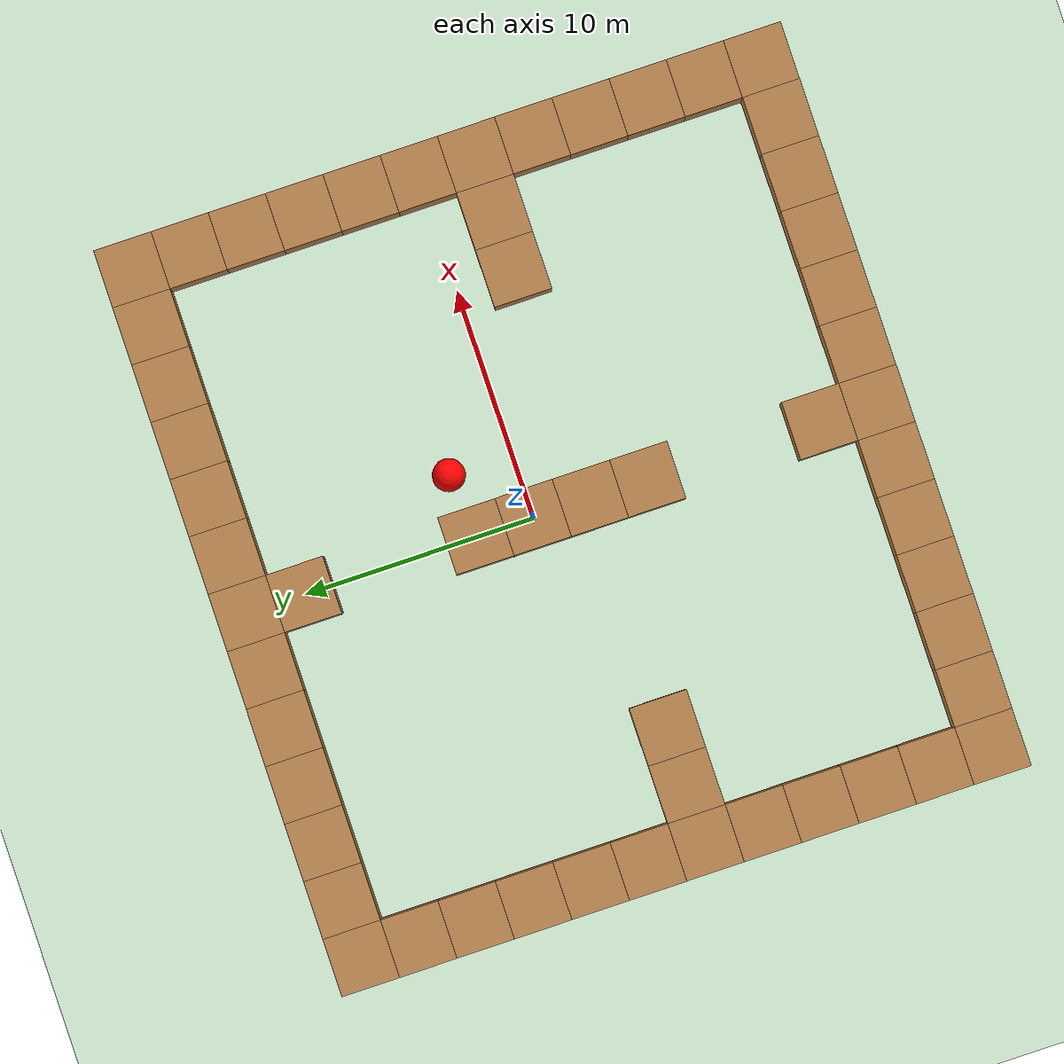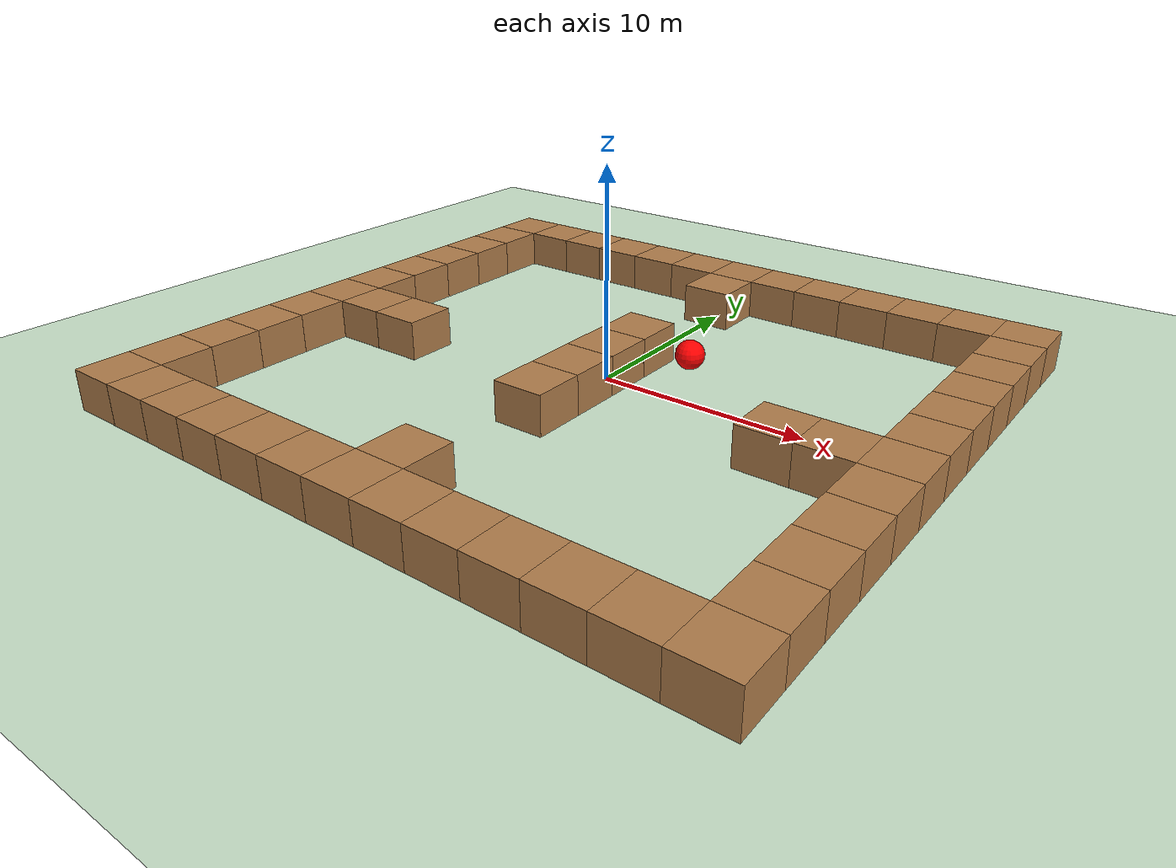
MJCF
<mujoco model="ant">
  <compiler angle="degree" coordinate="local" inertiafromgeom="true" />
  <size nconmax="3500" njmax="5000" />
  <option integrator="RK4" timestep="0.01" />
  <custom>
    <numeric data="0.0 0.0 0.55 1.0 0.0 0.0 0.0 0.0 1.0 0.0 -1.0 0.0 -1.0 0.0 1.0" name="init_qpos" />
  </custom>
  <default>
    <joint armature="1" damping="1" limited="true" />
    <geom conaffinity="0" condim="3" density="5.0" friction="1 0.5 0.5" margin="0.01" rgba="0.8 0.6 0.4 1" solimp=".8 .8 .01" solref=".02 1" />
  </default>
  <asset>
    <texture builtin="gradient" height="100" rgb1="1 1 1" rgb2="0 0 0" type="skybox" width="100" />
    <texture builtin="flat" height="1278" mark="cross" markrgb="1 1 1" name="texgeom" random="0.01" rgb1="0.8 0.6 0.4" rgb2="0.8 0.6 0.4" type="cube" width="127" />
    <texture builtin="checker" height="100" name="texplane" rgb1="0.2 0.3 0.4" rgb2="0.1 0.2 0.3" type="2d" width="100" />
    <material name="MatPlane" reflectance="0.0" shininess="1" specular="1" texrepeat="60 60" texture="texplane" />
    <material name="geom" texture="texgeom" texuniform="true" />
  </asset>
  <worldbody>
    <light cutoff="100" diffuse="1 1 1" dir="-0 0 -1.3" directional="true" exponent="1" pos="0 0 1.3" specular=".1 .1 .1" />

    <geom conaffinity="1" condim="3" material="MatPlane" name="floor" pos="0 0 0" rgba="0.8 0.9 0.8 1" size="40 40 40" type="plane" />
    <body name="torso" pos="0 0 0.75">
      <geom name="torso_geom" pos="0 0 0" rgba="0.3 0.9 0.5 1" size="0.4" type="sphere" />
      <joint armature="0" axis="0 0 1" damping="0" limited="false" margin="0.01" name="root" pos="0 0 0" type="free" />
      <body name="front_left_leg" pos="0 0 0">
        <geom fromto="0.0 0.0 0.0 0.4 0.4 0.0" name="aux_1_geom" size="0.08" type="capsule" />
        <body name="aux_1" pos="0.4 0.4 0">
          <joint axis="0 0 1" name="hip_1" pos="0.0 0.0 0.0" range="-30 30" type="hinge" />
          <geom fromto="0.0 0.0 0.0 0.4 0.4 0.0" name="left_leg_geom" size="0.08" type="capsule" />
          <body pos="0.4 0.4 0">
            <joint axis="-1 1 0" name="ankle_1" pos="0.0 0.0 0.0" range="30 70" type="hinge" />
            <geom fromto="0.0 0.0 0.0 0.4 0.4 0.0" name="left_ankle_geom" size="0.08" type="capsule" />
          </body>
        </body>
      </body>
      <body name="front_right_leg" pos="0 0 0">
        <geom fromto="0.0 0.0 0.0 -0.4 0.4 0.0" name="aux_2_geom" size="0.08" type="capsule" />
        <body name="aux_2" pos="-0.4 0.4 0">
          <joint axis="0 0 1" name="hip_2" pos="0.0 0.0 0.0" range="-30 30" type="hinge" />
          <geom fromto="0.0 0.0 0.0 -0.4 0.4 0.0" name="right_leg_geom" size="0.08" type="capsule" />
          <body pos="-0.4 0.4 0">
            <joint axis="1 1 0" name="ankle_2" pos="0.0 0.0 0.0" range="-70 -30" type="hinge" />
            <geom fromto="0.0 0.0 0.0 -0.4 0.4 0.0" name="right_ankle_geom" size="0.08" type="capsule" />
          </body>
        </body>
      </body>
      <body name="back_leg" pos="0 0 0">
        <geom fromto="0.0 0.0 0.0 -0.4 -0.4 0.0" name="aux_3_geom" size="0.08" type="capsule" />
        <body name="aux_3" pos="-0.4 -0.4 0">
          <joint axis="0 0 1" name="hip_3" pos="0.0 0.0 0.0" range="-30 30" type="hinge" />
          <geom fromto="0.0 0.0 0.0 -0.4 -0.4 0.0" name="back_leg_geom" size="0.08" type="capsule" />
          <body pos="-0.4 -0.4 0">
            <joint axis="-1 1 0" name="ankle_3" pos="0.0 0.0 0.0" range="-70 -30" type="hinge" />
            <geom fromto="0.0 0.0 0.0 -0.4 -0.4 0.0" name="third_ankle_geom" size="0.08" type="capsule" />
          </body>
        </body>
      </body>
      <body name="right_back_leg" pos="0 0 0">
        <geom fromto="0.0 0.0 0.0 0.4 -0.4 0.0" name="aux_4_geom" size="0.08" type="capsule" />
        <body name="aux_4" pos="0.4 -0.4 0">
          <joint axis="0 0 1" name="hip_4" pos="0.0 0.0 0.0" range="-30 30" type="hinge" />
          <geom fromto="0.0 0.0 0.0 0.4 -0.4 0.0" name="rightback_leg_geom" size="0.08" type="capsule" />
          <body pos="0.4 -0.4 0">
            <joint axis="1 1 0" name="ankle_4" pos="0.0 0.0 0.0" range="30 70" type="hinge" />
            <geom fromto="0.0 0.0 0.0 0.4 -0.4 0.0" name="fourth_ankle_geom" size="0.08" type="capsule" />
          </body>
        </body>
      </body>
    </body>
    <body name="skybox" pos="0.8 0.75 0">
      <site name="target0" pos="2 2 1" rgba="1 0 0 1" size="0.7" type="sphere" />
      <site name="subgoal_0" pos="0 0 0.5" rgba="1 0 1 0" size="0.7" type="sphere" />
      <site name="subgoal_1" pos="0 0 0.5" rgba="0 1 0 0" size="0.7" type="sphere" />
      <site name="subgoal_2" pos="0 0 0.5" rgba="0.5 0.5 0.5 0" size="0.7" type="sphere" />
      <site name="subgoal_3" pos="0 0 0.5" rgba="1 1 1 0" size="0.7" type="sphere" />
      <site name="subgoal_4" pos="0 0 0.5" rgba="0 0 0 0" size="0.7" type="sphere" />
    </body>

  <geom material="" name="object_0_0" pos="-15.000000 12.500000 0.625000" rgba="0.7 0.5 0.3 1.0" size="1.250000 1.250000 1.250000" type="box" /><geom material="" name="object_0_1" pos="-12.500000 12.500000 0.625000" rgba="0.7 0.5 0.3 1.0" size="1.250000 1.250000 1.250000" type="box" /><geom material="" name="object_0_2" pos="-10.000000 12.500000 0.625000" rgba="0.7 0.5 0.3 1.0" size="1.250000 1.250000 1.250000" type="box" /><geom material="" name="object_0_3" pos="-7.500000 12.500000 0.625000" rgba="0.7 0.5 0.3 1.0" size="1.250000 1.250000 1.250000" type="box" /><geom material="" name="object_0_4" pos="-5.000000 12.500000 0.625000" rgba="0.7 0.5 0.3 1.0" size="1.250000 1.250000 1.250000" type="box" /><geom material="" name="object_0_5" pos="-2.500000 12.500000 0.625000" rgba="0.7 0.5 0.3 1.0" size="1.250000 1.250000 1.250000" type="box" /><geom material="" name="object_0_6" pos="0.000000 12.500000 0.625000" rgba="0.7 0.5 0.3 1.0" size="1.250000 1.250000 1.250000" type="box" /><geom material="" name="object_0_7" pos="2.500000 12.500000 0.625000" rgba="0.7 0.5 0.3 1.0" size="1.250000 1.250000 1.250000" type="box" /><geom material="" name="object_0_8" pos="5.000000 12.500000 0.625000" rgba="0.7 0.5 0.3 1.0" size="1.250000 1.250000 1.250000" type="box" /><geom material="" name="object_0_9" pos="7.500000 12.500000 0.625000" rgba="0.7 0.5 0.3 1.0" size="1.250000 1.250000 1.250000" type="box" /><geom material="" name="object_0_10" pos="10.000000 12.500000 0.625000" rgba="0.7 0.5 0.3 1.0" size="1.250000 1.250000 1.250000" type="box" /><geom material="" name="object_0_11" pos="12.500000 12.500000 0.625000" rgba="0.7 0.5 0.3 1.0" size="1.250000 1.250000 1.250000" type="box" /><geom material="" name="object_0_12" pos="15.000000 12.500000 0.625000" rgba="0.7 0.5 0.3 1.0" size="1.250000 1.250000 1.250000" type="box" /><geom material="" name="object_1_0" pos="-15.000000 10.000000 0.625000" rgba="0.7 0.5 0.3 1.0" size="1.250000 1.250000 1.250000" type="box" /><geom material="" name="object_1_6" pos="0.000000 10.000000 0.625000" rgba="0.7 0.5 0.3 1.0" size="1.250000 1.250000 1.250000" type="box" /><geom material="" name="object_1_12" pos="15.000000 10.000000 0.625000" rgba="0.7 0.5 0.3 1.0" size="1.250000 1.250000 1.250000" type="box" /><geom material="" name="object_2_0" pos="-15.000000 7.500000 0.625000" rgba="0.7 0.5 0.3 1.0" size="1.250000 1.250000 1.250000" type="box" /><geom material="" name="object_2_12" pos="15.000000 7.500000 0.625000" rgba="0.7 0.5 0.3 1.0" size="1.250000 1.250000 1.250000" type="box" /><geom material="" name="object_3_0" pos="-15.000000 5.000000 0.625000" rgba="0.7 0.5 0.3 1.0" size="1.250000 1.250000 1.250000" type="box" /><geom material="" name="object_3_12" pos="15.000000 5.000000 0.625000" rgba="0.7 0.5 0.3 1.0" size="1.250000 1.250000 1.250000" type="box" /><geom material="" name="object_4_0" pos="-15.000000 2.500000 0.625000" rgba="0.7 0.5 0.3 1.0" size="1.250000 1.250000 1.250000" type="box" /><geom material="" name="object_4_6" pos="0.000000 2.500000 0.625000" rgba="0.7 0.5 0.3 1.0" size="1.250000 1.250000 1.250000" type="box" /><geom material="" name="object_4_12" pos="15.000000 2.500000 0.625000" rgba="0.7 0.5 0.3 1.0" size="1.250000 1.250000 1.250000" type="box" /><geom material="" name="object_5_0" pos="-15.000000 0.000000 0.625000" rgba="0.7 0.5 0.3 1.0" size="1.250000 1.250000 1.250000" type="box" /><geom material="" name="object_5_6" pos="0.000000 0.000000 0.625000" rgba="0.7 0.5 0.3 1.0" size="1.250000 1.250000 1.250000" type="box" /><geom material="" name="object_5_12" pos="15.000000 0.000000 0.625000" rgba="0.7 0.5 0.3 1.0" size="1.250000 1.250000 1.250000" type="box" /><geom material="" name="object_6_0" pos="-15.000000 -2.500000 0.625000" rgba="0.7 0.5 0.3 1.0" size="1.250000 1.250000 1.250000" type="box" /><geom material="" name="object_6_1" pos="-12.500000 -2.500000 0.625000" rgba="0.7 0.5 0.3 1.0" size="1.250000 1.250000 1.250000" type="box" /><geom material="" name="object_6_2" pos="-10.000000 -2.500000 0.625000" rgba="0.7 0.5 0.3 1.0" size="1.250000 1.250000 1.250000" type="box" /><geom material="" name="object_6_6" pos="0.000000 -2.500000 0.625000" rgba="0.7 0.5 0.3 1.0" size="1.250000 1.250000 1.250000" type="box" /><geom material="" name="object_6_10" pos="10.000000 -2.500000 0.625000" rgba="0.7 0.5 0.3 1.0" size="1.250000 1.250000 1.250000" type="box" /><geom material="" name="object_6_11" pos="12.500000 -2.500000 0.625000" rgba="0.7 0.5 0.3 1.0" size="1.250000 1.250000 1.250000" type="box" /><geom material="" name="object_6_12" pos="15.000000 -2.500000 0.625000" rgba="0.7 0.5 0.3 1.0" size="1.250000 1.250000 1.250000" type="box" /><geom material="" name="object_7_0" pos="-15.000000 -5.000000 0.625000" rgba="0.7 0.5 0.3 1.0" size="1.250000 1.250000 1.250000" type="box" /><geom material="" name="object_7_6" pos="0.000000 -5.000000 0.625000" rgba="0.7 0.5 0.3 1.0" size="1.250000 1.250000 1.250000" type="box" /><geom material="" name="object_7_12" pos="15.000000 -5.000000 0.625000" rgba="0.7 0.5 0.3 1.0" size="1.250000 1.250000 1.250000" type="box" /><geom material="" name="object_8_0" pos="-15.000000 -7.500000 0.625000" rgba="0.7 0.5 0.3 1.0" size="1.250000 1.250000 1.250000" type="box" /><geom material="" name="object_8_12" pos="15.000000 -7.500000 0.625000" rgba="0.7 0.5 0.3 1.0" size="1.250000 1.250000 1.250000" type="box" /><geom material="" name="object_9_0" pos="-15.000000 -10.000000 0.625000" rgba="0.7 0.5 0.3 1.0" size="1.250000 1.250000 1.250000" type="box" /><geom material="" name="object_9_12" pos="15.000000 -10.000000 0.625000" rgba="0.7 0.5 0.3 1.0" size="1.250000 1.250000 1.250000" type="box" /><geom material="" name="object_10_0" pos="-15.000000 -12.500000 0.625000" rgba="0.7 0.5 0.3 1.0" size="1.250000 1.250000 1.250000" type="box" /><geom material="" name="object_10_6" pos="0.000000 -12.500000 0.625000" rgba="0.7 0.5 0.3 1.0" size="1.250000 1.250000 1.250000" type="box" /><geom material="" name="object_10_12" pos="15.000000 -12.500000 0.625000" rgba="0.7 0.5 0.3 1.0" size="1.250000 1.250000 1.250000" type="box" /><geom material="" name="object_11_0" pos="-15.000000 -15.000000 0.625000" rgba="0.7 0.5 0.3 1.0" size="1.250000 1.250000 1.250000" type="box" /><geom material="" name="object_11_1" pos="-12.500000 -15.000000 0.625000" rgba="0.7 0.5 0.3 1.0" size="1.250000 1.250000 1.250000" type="box" /><geom material="" name="object_11_2" pos="-10.000000 -15.000000 0.625000" rgba="0.7 0.5 0.3 1.0" size="1.250000 1.250000 1.250000" type="box" /><geom material="" name="object_11_3" pos="-7.500000 -15.000000 0.625000" rgba="0.7 0.5 0.3 1.0" size="1.250000 1.250000 1.250000" type="box" /><geom material="" name="object_11_4" pos="-5.000000 -15.000000 0.625000" rgba="0.7 0.5 0.3 1.0" size="1.250000 1.250000 1.250000" type="box" /><geom material="" name="object_11_5" pos="-2.500000 -15.000000 0.625000" rgba="0.7 0.5 0.3 1.0" size="1.250000 1.250000 1.250000" type="box" /><geom material="" name="object_11_6" pos="0.000000 -15.000000 0.625000" rgba="0.7 0.5 0.3 1.0" size="1.250000 1.250000 1.250000" type="box" /><geom material="" name="object_11_7" pos="2.500000 -15.000000 0.625000" rgba="0.7 0.5 0.3 1.0" size="1.250000 1.250000 1.250000" type="box" /><geom material="" name="object_11_8" pos="5.000000 -15.000000 0.625000" rgba="0.7 0.5 0.3 1.0" size="1.250000 1.250000 1.250000" type="box" /><geom material="" name="object_11_9" pos="7.500000 -15.000000 0.625000" rgba="0.7 0.5 0.3 1.0" size="1.250000 1.250000 1.250000" type="box" /><geom material="" name="object_11_10" pos="10.000000 -15.000000 0.625000" rgba="0.7 0.5 0.3 1.0" size="1.250000 1.250000 1.250000" type="box" /><geom material="" name="object_11_11" pos="12.500000 -15.000000 0.625000" rgba="0.7 0.5 0.3 1.0" size="1.250000 1.250000 1.250000" type="box" /><geom material="" name="object_11_12" pos="15.000000 -15.000000 0.625000" rgba="0.7 0.5 0.3 1.0" size="1.250000 1.250000 1.250000" type="box" /></worldbody>
  <actuator>
    <motor ctrllimited="true" ctrlrange="-1.0 1.0" gear="100.0" joint="hip_1" />
    <motor ctrllimited="true" ctrlrange="-1.0 1.0" gear="100.0" joint="hip_2" />
    <motor ctrllimited="true" ctrlrange="-1.0 1.0" gear="100.0" joint="hip_3" />
    <motor ctrllimited="true" ctrlrange="-1.0 1.0" gear="100.0" joint="hip_4" />
    <motor ctrllimited="true" ctrlrange="-1.0 1.0" gear="100.0" joint="ankle_4" />
    <motor ctrllimited="true" ctrlrange="-1.0 1.0" gear="100.0" joint="ankle_1" />
    <motor ctrllimited="true" ctrlrange="-1.0 1.0" gear="100.0" joint="ankle_2" />
    <motor ctrllimited="true" ctrlrange="-1.0 1.0" gear="100.0" joint="ankle_3" />
  </actuator>
</mujoco>
